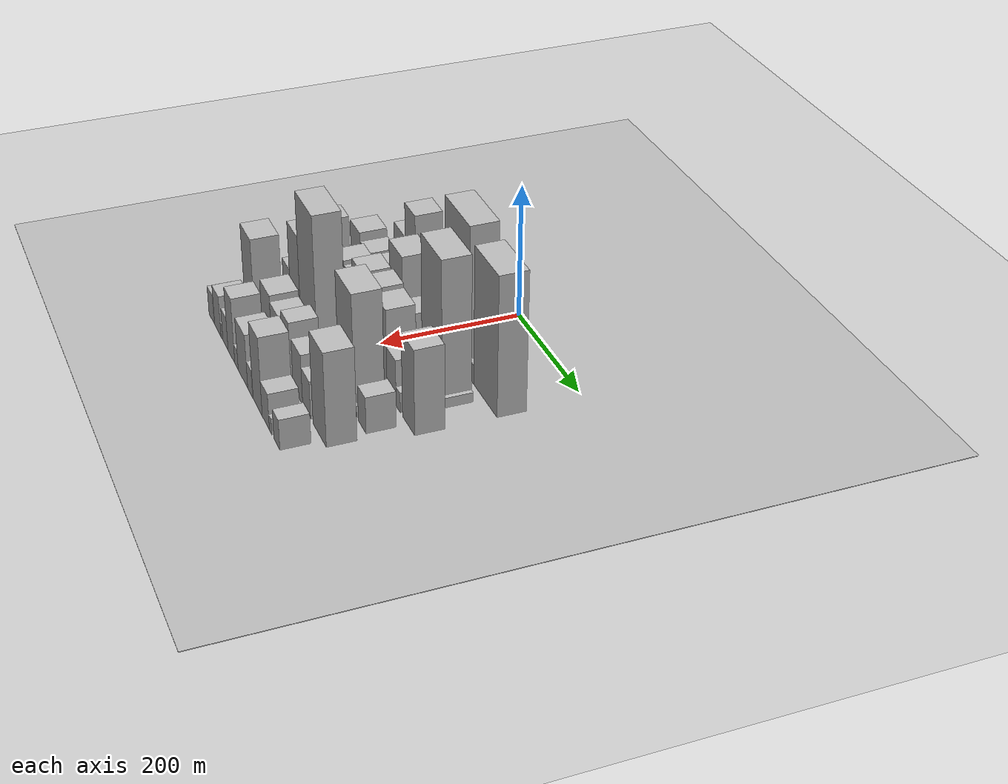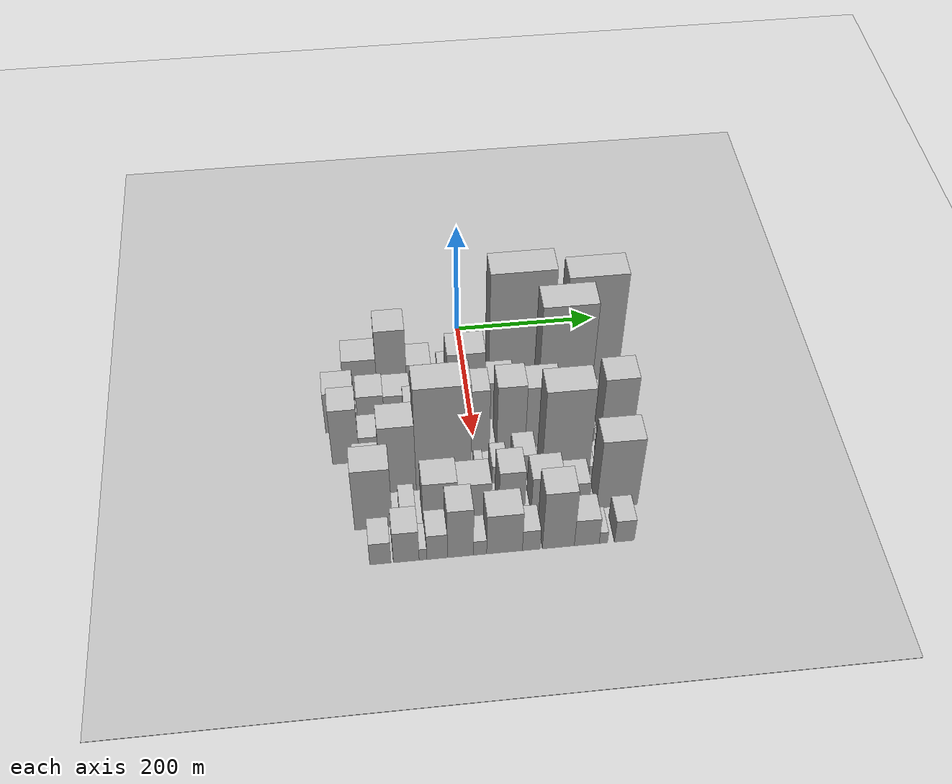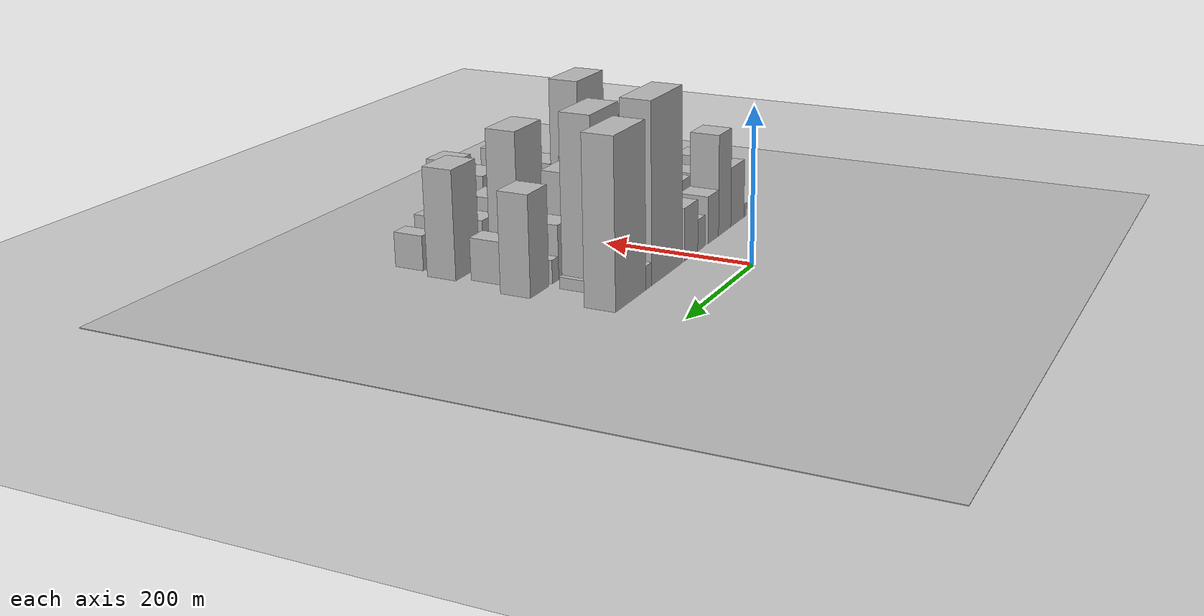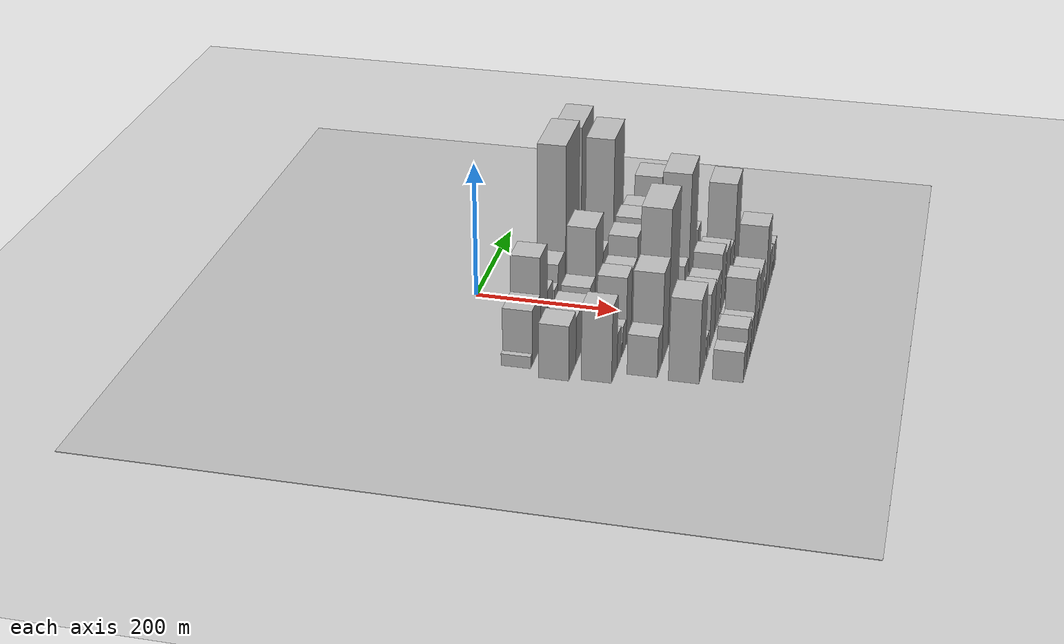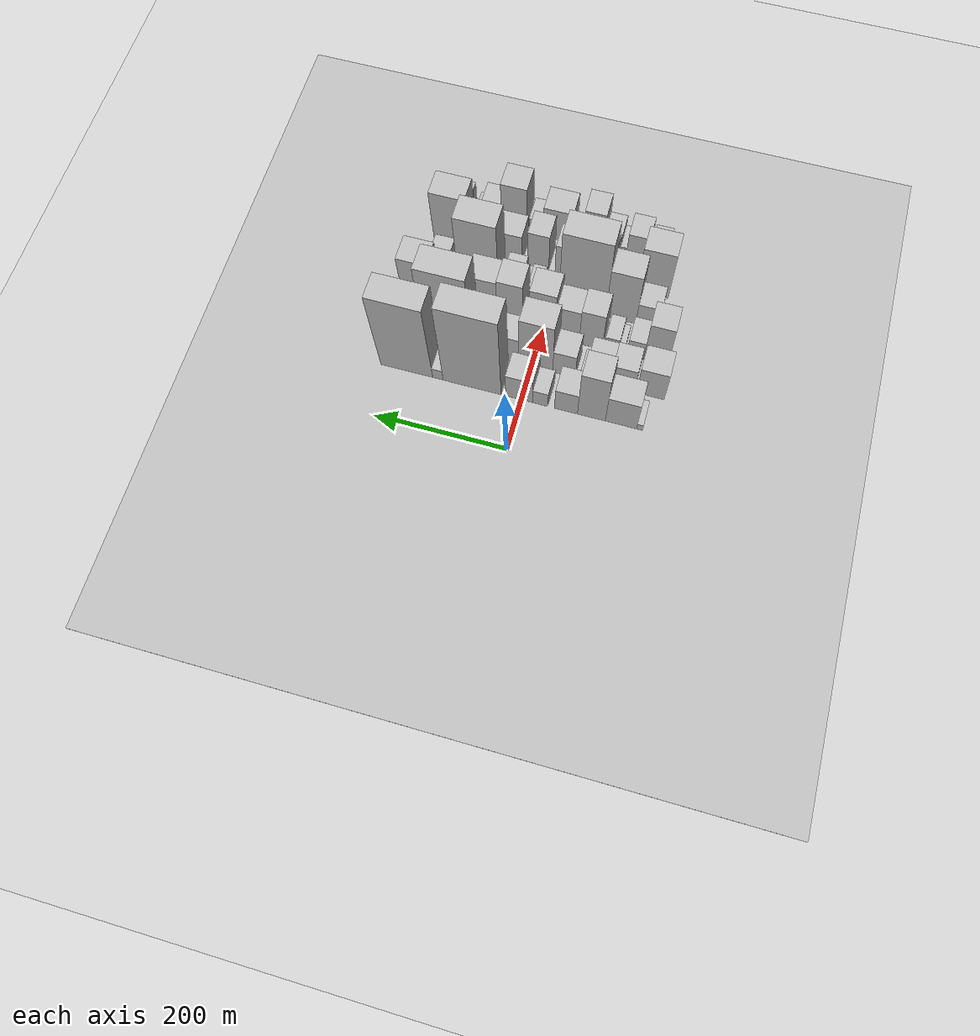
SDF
<sdf version="1.6">
 <world name="default">
  <include><name>ground_plane_1</name><uri>model://HANNAS_ground_plane</uri></include>
  <include>
   <name>ground_plane_2</name>
   <uri>model://HANNAS_ground_plane</uri>
   <pose>100 0 0  0 0 0</pose>
  </include>
  <model name="building_22">
   <static>1</static>
   <pose>100.0000 -175.6057 0 0.000000 0.000000 0.000000</pose>
   <link name="link">
    <pose>0 0 9.00 0 0 0</pose>
    <collision name="collision"><geometry><box><size>40.0000 8.9547 18.0000</size></box></geometry></collision>
    <visual name="visual">
     <cast_shadows>0</cast_shadows>
     <geometry><box><size>40.0000 8.9547 18.0000</size></box></geometry>
     <material>
      <script>
       <uri>model://HANNAS_wall/materials/scripts</uri>
       <uri>model://HANNAS_wall/materials/textures</uri>
       <name>vrc/HANNAS_wall</name>
      </script>
     </material>
    </visual>
   </link>
  </model>
  <model name="building_23">
   <static>1</static>
   <pose>100.0000 -147.9106 0 0.000000 0.000000 0.000000</pose>
   <link name="link">
    <pose>0 0 40.50 0 0 0</pose>
    <collision name="collision"><geometry><box><size>40.0000 46.4355 81.0000</size></box></geometry></collision>
    <visual name="visual">
     <cast_shadows>0</cast_shadows>
     <geometry><box><size>40.0000 46.4355 81.0000</size></box></geometry>
     <material>
      <script>
       <uri>model://HANNAS_wall/materials/scripts</uri>
       <uri>model://HANNAS_wall/materials/textures</uri>
       <name>vrc/HANNAS_wall</name>
      </script>
     </material>
    </visual>
   </link>
  </model>
  <model name="building_24">
   <static>1</static>
   <pose>100.0000 -103.9873 0 0.000000 0.000000 0.000000</pose>
   <link name="link">
    <pose>0 0 67.50 0 0 0</pose>
    <collision name="collision"><geometry><box><size>40.0000 41.4111 135.0000</size></box></geometry></collision>
    <visual name="visual">
     <cast_shadows>0</cast_shadows>
     <geometry><box><size>40.0000 41.4111 135.0000</size></box></geometry>
     <material>
      <script>
       <uri>model://HANNAS_wall/materials/scripts</uri>
       <uri>model://HANNAS_wall/materials/textures</uri>
       <name>vrc/HANNAS_wall</name>
      </script>
     </material>
    </visual>
   </link>
  </model>
  <model name="building_25">
   <static>1</static>
   <pose>100.0000 -66.1264 0 0.000000 0.000000 0.000000</pose>
   <link name="link">
    <pose>0 0 31.50 0 0 0</pose>
    <collision name="collision"><geometry><box><size>40.0000 34.3106 63.0000</size></box></geometry></collision>
    <visual name="visual">
     <cast_shadows>0</cast_shadows>
     <geometry><box><size>40.0000 34.3106 63.0000</size></box></geometry>
     <material>
      <script>
       <uri>model://HANNAS_wall/materials/scripts</uri>
       <uri>model://HANNAS_wall/materials/textures</uri>
       <name>vrc/HANNAS_wall</name>
      </script>
     </material>
    </visual>
   </link>
  </model>
  <model name="building_26">
   <static>1</static>
   <pose>100.0000 -27.5412 0 0.000000 0.000000 0.000000</pose>
   <link name="link">
    <pose>0 0 21.00 0 0 0</pose>
    <collision name="collision"><geometry><box><size>40.0000 22.8598 42.0000</size></box></geometry></collision>
    <visual name="visual">
     <cast_shadows>0</cast_shadows>
     <geometry><box><size>40.0000 22.8598 42.0000</size></box></geometry>
     <material>
      <script>
       <uri>model://HANNAS_wall/materials/scripts</uri>
       <uri>model://HANNAS_wall/materials/textures</uri>
       <name>vrc/HANNAS_wall</name>
      </script>
     </material>
    </visual>
   </link>
  </model>
  <model name="building_27">
   <static>1</static>
   <pose>100.0000 4.2147 0 0.000000 0.000000 0.000000</pose>
   <link name="link">
    <pose>0 0 34.50 0 0 0</pose>
    <collision name="collision"><geometry><box><size>40.0000 40.6521 69.0000</size></box></geometry></collision>
    <visual name="visual">
     <cast_shadows>0</cast_shadows>
     <geometry><box><size>40.0000 40.6521 69.0000</size></box></geometry>
     <material>
      <script>
       <uri>model://HANNAS_wall/materials/scripts</uri>
       <uri>model://HANNAS_wall/materials/textures</uri>
       <name>vrc/HANNAS_wall</name>
      </script>
     </material>
    </visual>
   </link>
  </model>
  <model name="building_28">
   <static>1</static>
   <pose>100.0000 75.6349 0 0.000000 0.000000 0.000000</pose>
   <link name="link">
    <pose>0 0 112.50 0 0 0</pose>
    <collision name="collision"><geometry><box><size>40.0000 88.1882 225.0000</size></box></geometry></collision>
    <visual name="visual">
     <cast_shadows>0</cast_shadows>
     <geometry><box><size>40.0000 88.1882 225.0000</size></box></geometry>
     <material>
      <script>
       <uri>model://HANNAS_wall/materials/scripts</uri>
       <uri>model://HANNAS_wall/materials/textures</uri>
       <name>vrc/HANNAS_wall</name>
      </script>
     </material>
    </visual>
   </link>
  </model>
  <model name="building_29">
   <static>1</static>
   <pose>100.0000 127.7942 0 0.000000 0.000000 0.000000</pose>
   <link name="link">
    <pose>0 0 15.00 0 0 0</pose>
    <collision name="collision"><geometry><box><size>40.0000 16.1303 30.0000</size></box></geometry></collision>
    <visual name="visual">
     <cast_shadows>0</cast_shadows>
     <geometry><box><size>40.0000 16.1303 30.0000</size></box></geometry>
     <material>
      <script>
       <uri>model://HANNAS_wall/materials/scripts</uri>
       <uri>model://HANNAS_wall/materials/textures</uri>
       <name>vrc/HANNAS_wall</name>
      </script>
     </material>
    </visual>
   </link>
  </model>
  <model name="building_30">
   <static>1</static>
   <pose>100.0000 175.9468 0 0.000000 0.000000 0.000000</pose>
   <link name="link">
    <pose>0 0 103.50 0 0 0</pose>
    <collision name="collision"><geometry><box><size>40.0000 80.1750 207.0000</size></box></geometry></collision>
    <visual name="visual">
     <cast_shadows>0</cast_shadows>
     <geometry><box><size>40.0000 80.1750 207.0000</size></box></geometry>
     <material>
      <script>
       <uri>model://HANNAS_wall/materials/scripts</uri>
       <uri>model://HANNAS_wall/materials/textures</uri>
       <name>vrc/HANNAS_wall</name>
      </script>
     </material>
    </visual>
   </link>
  </model>
  <model name="building_74">
   <static>1</static>
   <pose>155.0000 -178.7710 0 0.000000 0.000000 0.000000</pose>
   <link name="link">
    <pose>0 0 40.50 0 0 0</pose>
    <collision name="collision"><geometry><box><size>40.0000 41.5594 81.0000</size></box></geometry></collision>
    <visual name="visual">
     <cast_shadows>0</cast_shadows>
     <geometry><box><size>40.0000 41.5594 81.0000</size></box></geometry>
     <material>
      <script>
       <uri>model://HANNAS_wall/materials/scripts</uri>
       <uri>model://HANNAS_wall/materials/textures</uri>
       <name>vrc/HANNAS_wall</name>
      </script>
     </material>
    </visual>
   </link>
  </model>
  <model name="building_75">
   <static>1</static>
   <pose>155.0000 -136.8236 0 0.000000 0.000000 0.000000</pose>
   <link name="link">
    <pose>0 0 34.50 0 0 0</pose>
    <collision name="collision"><geometry><box><size>40.0000 36.3355 69.0000</size></box></geometry></collision>
    <visual name="visual">
     <cast_shadows>0</cast_shadows>
     <geometry><box><size>40.0000 36.3355 69.0000</size></box></geometry>
     <material>
      <script>
       <uri>model://HANNAS_wall/materials/scripts</uri>
       <uri>model://HANNAS_wall/materials/textures</uri>
       <name>vrc/HANNAS_wall</name>
      </script>
     </material>
    </visual>
   </link>
  </model>
  <model name="building_76">
   <static>1</static>
   <pose>155.0000 -100.0804 0 0.000000 0.000000 0.000000</pose>
   <link name="link">
    <pose>0 0 33.00 0 0 0</pose>
    <collision name="collision"><geometry><box><size>40.0000 37.1510 66.0000</size></box></geometry></collision>
    <visual name="visual">
     <cast_shadows>0</cast_shadows>
     <geometry><box><size>40.0000 37.1510 66.0000</size></box></geometry>
     <material>
      <script>
       <uri>model://HANNAS_wall/materials/scripts</uri>
       <uri>model://HANNAS_wall/materials/textures</uri>
       <name>vrc/HANNAS_wall</name>
      </script>
     </material>
    </visual>
   </link>
  </model>
  <model name="building_77">
   <static>1</static>
   <pose>155.0000 -77.2413 0 0.000000 0.000000 0.000000</pose>
   <link name="link">
    <pose>0 0 10.50 0 0 0</pose>
    <collision name="collision"><geometry><box><size>40.0000 8.5272 21.0000</size></box></geometry></collision>
    <visual name="visual">
     <cast_shadows>0</cast_shadows>
     <geometry><box><size>40.0000 8.5272 21.0000</size></box></geometry>
     <material>
      <script>
       <uri>model://HANNAS_wall/materials/scripts</uri>
       <uri>model://HANNAS_wall/materials/textures</uri>
       <name>vrc/HANNAS_wall</name>
      </script>
     </material>
    </visual>
   </link>
  </model>
  <model name="building_78">
   <static>1</static>
   <pose>155.0000 -48.8258 0 0.000000 0.000000 0.000000</pose>
   <link name="link">
    <pose>0 0 33.00 0 0 0</pose>
    <collision name="collision"><geometry><box><size>40.0000 34.3039 66.0000</size></box></geometry></collision>
    <visual name="visual">
     <cast_shadows>0</cast_shadows>
     <geometry><box><size>40.0000 34.3039 66.0000</size></box></geometry>
     <material>
      <script>
       <uri>model://HANNAS_wall/materials/scripts</uri>
       <uri>model://HANNAS_wall/materials/textures</uri>
       <name>vrc/HANNAS_wall</name>
      </script>
     </material>
    </visual>
   </link>
  </model>
  <model name="building_79">
   <static>1</static>
   <pose>155.0000 -6.0133 0 0.000000 0.000000 0.000000</pose>
   <link name="link">
    <pose>0 0 69.00 0 0 0</pose>
    <collision name="collision"><geometry><box><size>40.0000 51.3212 138.0000</size></box></geometry></collision>
    <visual name="visual">
     <cast_shadows>0</cast_shadows>
     <geometry><box><size>40.0000 51.3212 138.0000</size></box></geometry>
     <material>
      <script>
       <uri>model://HANNAS_wall/materials/scripts</uri>
       <uri>model://HANNAS_wall/materials/textures</uri>
       <name>vrc/HANNAS_wall</name>
      </script>
     </material>
    </visual>
   </link>
  </model>
  <model name="building_80">
   <static>1</static>
   <pose>155.0000 39.8770 0 0.000000 0.000000 0.000000</pose>
   <link name="link">
    <pose>0 0 37.50 0 0 0</pose>
    <collision name="collision"><geometry><box><size>40.0000 40.4593 75.0000</size></box></geometry></collision>
    <visual name="visual">
     <cast_shadows>0</cast_shadows>
     <geometry><box><size>40.0000 40.4593 75.0000</size></box></geometry>
     <material>
      <script>
       <uri>model://HANNAS_wall/materials/scripts</uri>
       <uri>model://HANNAS_wall/materials/textures</uri>
       <name>vrc/HANNAS_wall</name>
      </script>
     </material>
    </visual>
   </link>
  </model>
  <model name="building_81">
   <static>1</static>
   <pose>155.0000 81.4177 0 0.000000 0.000000 0.000000</pose>
   <link name="link">
    <pose>0 0 19.50 0 0 0</pose>
    <collision name="collision"><geometry><box><size>40.0000 22.6221 39.0000</size></box></geometry></collision>
    <visual name="visual">
     <cast_shadows>0</cast_shadows>
     <geometry><box><size>40.0000 22.6221 39.0000</size></box></geometry>
     <material>
      <script>
       <uri>model://HANNAS_wall/materials/scripts</uri>
       <uri>model://HANNAS_wall/materials/textures</uri>
       <name>vrc/HANNAS_wall</name>
      </script>
     </material>
    </visual>
   </link>
  </model>
  <model name="building_82">
   <static>1</static>
   <pose>155.0000 129.2748 0 0.000000 0.000000 0.000000</pose>
   <link name="link">
    <pose>0 0 106.50 0 0 0</pose>
    <collision name="collision"><geometry><box><size>40.0000 73.0922 213.0000</size></box></geometry></collision>
    <visual name="visual">
     <cast_shadows>0</cast_shadows>
     <geometry><box><size>40.0000 73.0922 213.0000</size></box></geometry>
     <material>
      <script>
       <uri>model://HANNAS_wall/materials/scripts</uri>
       <uri>model://HANNAS_wall/materials/textures</uri>
       <name>vrc/HANNAS_wall</name>
      </script>
     </material>
    </visual>
   </link>
  </model>
  <model name="building_83">
   <static>1</static>
   <pose>155.0000 169.4314 0 0.000000 0.000000 0.000000</pose>
   <link name="link">
    <pose>0 0 7.50 0 0 0</pose>
    <collision name="collision"><geometry><box><size>40.0000 7.2210 15.0000</size></box></geometry></collision>
    <visual name="visual">
     <cast_shadows>0</cast_shadows>
     <geometry><box><size>40.0000 7.2210 15.0000</size></box></geometry>
     <material>
      <script>
       <uri>model://HANNAS_wall/materials/scripts</uri>
       <uri>model://HANNAS_wall/materials/textures</uri>
       <name>vrc/HANNAS_wall</name>
      </script>
     </material>
    </visual>
   </link>
  </model>
  <model name="building_121">
   <static>1</static>
   <pose>210.0000 -174.4764 0 0.000000 0.000000 0.000000</pose>
   <link name="link">
    <pose>0 0 55.50 0 0 0</pose>
    <collision name="collision"><geometry><box><size>40.0000 36.5147 111.0000</size></box></geometry></collision>
    <visual name="visual">
     <cast_shadows>0</cast_shadows>
     <geometry><box><size>40.0000 36.5147 111.0000</size></box></geometry>
     <material>
      <script>
       <uri>model://HANNAS_wall/materials/scripts</uri>
       <uri>model://HANNAS_wall/materials/textures</uri>
       <name>vrc/HANNAS_wall</name>
      </script>
     </material>
    </visual>
   </link>
  </model>
  <model name="building_122">
   <static>1</static>
   <pose>210.0000 -143.3797 0 0.000000 0.000000 0.000000</pose>
   <link name="link">
    <pose>0 0 25.50 0 0 0</pose>
    <collision name="collision"><geometry><box><size>40.0000 25.6786 51.0000</size></box></geometry></collision>
    <visual name="visual">
     <cast_shadows>0</cast_shadows>
     <geometry><box><size>40.0000 25.6786 51.0000</size></box></geometry>
     <material>
      <script>
       <uri>model://HANNAS_wall/materials/scripts</uri>
       <uri>model://HANNAS_wall/materials/textures</uri>
       <name>vrc/HANNAS_wall</name>
      </script>
     </material>
    </visual>
   </link>
  </model>
  <model name="building_123">
   <static>1</static>
   <pose>210.0000 -122.2338 0 0.000000 0.000000 0.000000</pose>
   <link name="link">
    <pose>0 0 10.50 0 0 0</pose>
    <collision name="collision"><geometry><box><size>40.0000 8.6133 21.0000</size></box></geometry></collision>
    <visual name="visual">
     <cast_shadows>0</cast_shadows>
     <geometry><box><size>40.0000 8.6133 21.0000</size></box></geometry>
     <material>
      <script>
       <uri>model://HANNAS_wall/materials/scripts</uri>
       <uri>model://HANNAS_wall/materials/textures</uri>
       <name>vrc/HANNAS_wall</name>
      </script>
     </material>
    </visual>
   </link>
  </model>
  <model name="building_124">
   <static>1</static>
   <pose>210.0000 -107.1232 0 0.000000 0.000000 0.000000</pose>
   <link name="link">
    <pose>0 0 21.00 0 0 0</pose>
    <collision name="collision"><geometry><box><size>40.0000 21.6079 42.0000</size></box></geometry></collision>
    <visual name="visual">
     <cast_shadows>0</cast_shadows>
     <geometry><box><size>40.0000 21.6079 42.0000</size></box></geometry>
     <material>
      <script>
       <uri>model://HANNAS_wall/materials/scripts</uri>
       <uri>model://HANNAS_wall/materials/textures</uri>
       <name>vrc/HANNAS_wall</name>
      </script>
     </material>
    </visual>
   </link>
  </model>
  <model name="building_125">
   <static>1</static>
   <pose>210.0000 -75.4646 0 0.000000 0.000000 0.000000</pose>
   <link name="link">
    <pose>0 0 51.00 0 0 0</pose>
    <collision name="collision"><geometry><box><size>40.0000 35.7093 102.0000</size></box></geometry></collision>
    <visual name="visual">
     <cast_shadows>0</cast_shadows>
     <geometry><box><size>40.0000 35.7093 102.0000</size></box></geometry>
     <material>
      <script>
       <uri>model://HANNAS_wall/materials/scripts</uri>
       <uri>model://HANNAS_wall/materials/textures</uri>
       <name>vrc/HANNAS_wall</name>
      </script>
     </material>
    </visual>
   </link>
  </model>
  <model name="building_126">
   <static>1</static>
   <pose>210.0000 -39.4611 0 0.000000 0.000000 0.000000</pose>
   <link name="link">
    <pose>0 0 48.00 0 0 0</pose>
    <collision name="collision"><geometry><box><size>40.0000 36.2976 96.0000</size></box></geometry></collision>
    <visual name="visual">
     <cast_shadows>0</cast_shadows>
     <geometry><box><size>40.0000 36.2976 96.0000</size></box></geometry>
     <material>
      <script>
       <uri>model://HANNAS_wall/materials/scripts</uri>
       <uri>model://HANNAS_wall/materials/textures</uri>
       <name>vrc/HANNAS_wall</name>
      </script>
     </material>
    </visual>
   </link>
  </model>
  <model name="building_127">
   <static>1</static>
   <pose>210.0000 -1.0134 0 0.000000 0.000000 0.000000</pose>
   <link name="link">
    <pose>0 0 63.00 0 0 0</pose>
    <collision name="collision"><geometry><box><size>40.0000 40.5979 126.0000</size></box></geometry></collision>
    <visual name="visual">
     <cast_shadows>0</cast_shadows>
     <geometry><box><size>40.0000 40.5979 126.0000</size></box></geometry>
     <material>
      <script>
       <uri>model://HANNAS_wall/materials/scripts</uri>
       <uri>model://HANNAS_wall/materials/textures</uri>
       <name>vrc/HANNAS_wall</name>
      </script>
     </material>
    </visual>
   </link>
  </model>
  <model name="building_128">
   <static>1</static>
   <pose>210.0000 48.7160 0 0.000000 0.000000 0.000000</pose>
   <link name="link">
    <pose>0 0 64.50 0 0 0</pose>
    <collision name="collision"><geometry><box><size>40.0000 38.8609 129.0000</size></box></geometry></collision>
    <visual name="visual">
     <cast_shadows>0</cast_shadows>
     <geometry><box><size>40.0000 38.8609 129.0000</size></box></geometry>
     <material>
      <script>
       <uri>model://HANNAS_wall/materials/scripts</uri>
       <uri>model://HANNAS_wall/materials/textures</uri>
       <name>vrc/HANNAS_wall</name>
      </script>
     </material>
    </visual>
   </link>
  </model>
  <model name="building_129">
   <static>1</static>
   <pose>210.0000 90.2143 0 0.000000 0.000000 0.000000</pose>
   <link name="link">
    <pose>0 0 61.50 0 0 0</pose>
    <collision name="collision"><geometry><box><size>40.0000 44.1357 123.0000</size></box></geometry></collision>
    <visual name="visual">
     <cast_shadows>0</cast_shadows>
     <geometry><box><size>40.0000 44.1357 123.0000</size></box></geometry>
     <material>
      <script>
       <uri>model://HANNAS_wall/materials/scripts</uri>
       <uri>model://HANNAS_wall/materials/textures</uri>
       <name>vrc/HANNAS_wall</name>
      </script>
     </material>
    </visual>
   </link>
  </model>
  <model name="building_130">
   <static>1</static>
   <pose>210.0000 129.6789 0 0.000000 0.000000 0.000000</pose>
   <link name="link">
    <pose>0 0 34.50 0 0 0</pose>
    <collision name="collision"><geometry><box><size>40.0000 34.7935 69.0000</size></box></geometry></collision>
    <visual name="visual">
     <cast_shadows>0</cast_shadows>
     <geometry><box><size>40.0000 34.7935 69.0000</size></box></geometry>
     <material>
      <script>
       <uri>model://HANNAS_wall/materials/scripts</uri>
       <uri>model://HANNAS_wall/materials/textures</uri>
       <name>vrc/HANNAS_wall</name>
      </script>
     </material>
    </visual>
   </link>
  </model>
  <model name="building_131">
   <static>1</static>
   <pose>210.0000 155.0085 0 0.000000 0.000000 0.000000</pose>
   <link name="link">
    <pose>0 0 15.00 0 0 0</pose>
    <collision name="collision"><geometry><box><size>40.0000 15.8657 30.0000</size></box></geometry></collision>
    <visual name="visual">
     <cast_shadows>0</cast_shadows>
     <geometry><box><size>40.0000 15.8657 30.0000</size></box></geometry>
     <material>
      <script>
       <uri>model://HANNAS_wall/materials/scripts</uri>
       <uri>model://HANNAS_wall/materials/textures</uri>
       <name>vrc/HANNAS_wall</name>
      </script>
     </material>
    </visual>
   </link>
  </model>
  <model name="building_132">
   <static>1</static>
   <pose>210.0000 193.5037 0 0.000000 0.000000 0.000000</pose>
   <link name="link">
    <pose>0 0 63.00 0 0 0</pose>
    <collision name="collision"><geometry><box><size>40.0000 45.1246 126.0000</size></box></geometry></collision>
    <visual name="visual">
     <cast_shadows>0</cast_shadows>
     <geometry><box><size>40.0000 45.1246 126.0000</size></box></geometry>
     <material>
      <script>
       <uri>model://HANNAS_wall/materials/scripts</uri>
       <uri>model://HANNAS_wall/materials/textures</uri>
       <name>vrc/HANNAS_wall</name>
      </script>
     </material>
    </visual>
   </link>
  </model>
  <model name="building_171">
   <static>1</static>
   <pose>265.0000 -148.5338 0 0.000000 0.000000 0.000000</pose>
   <link name="link">
    <pose>0 0 30.00 0 0 0</pose>
    <collision name="collision"><geometry><box><size>40.0000 34.2059 60.0000</size></box></geometry></collision>
    <visual name="visual">
     <cast_shadows>0</cast_shadows>
     <geometry><box><size>40.0000 34.2059 60.0000</size></box></geometry>
     <material>
      <script>
       <uri>model://HANNAS_wall/materials/scripts</uri>
       <uri>model://HANNAS_wall/materials/textures</uri>
       <name>vrc/HANNAS_wall</name>
      </script>
     </material>
    </visual>
   </link>
  </model>
  <model name="building_172">
   <static>1</static>
   <pose>265.0000 -108.0663 0 0.000000 0.000000 0.000000</pose>
   <link name="link">
    <pose>0 0 67.50 0 0 0</pose>
    <collision name="collision"><geometry><box><size>40.0000 46.7291 135.0000</size></box></geometry></collision>
    <visual name="visual">
     <cast_shadows>0</cast_shadows>
     <geometry><box><size>40.0000 46.7291 135.0000</size></box></geometry>
     <material>
      <script>
       <uri>model://HANNAS_wall/materials/scripts</uri>
       <uri>model://HANNAS_wall/materials/textures</uri>
       <name>vrc/HANNAS_wall</name>
      </script>
     </material>
    </visual>
   </link>
  </model>
  <model name="building_173">
   <static>1</static>
   <pose>265.0000 -48.2982 0 0.000000 0.000000 0.000000</pose>
   <link name="link">
    <pose>0 0 102.00 0 0 0</pose>
    <collision name="collision"><geometry><box><size>40.0000 72.8071 204.0000</size></box></geometry></collision>
    <visual name="visual">
     <cast_shadows>0</cast_shadows>
     <geometry><box><size>40.0000 72.8071 204.0000</size></box></geometry>
     <material>
      <script>
       <uri>model://HANNAS_wall/materials/scripts</uri>
       <uri>model://HANNAS_wall/materials/textures</uri>
       <name>vrc/HANNAS_wall</name>
      </script>
     </material>
    </visual>
   </link>
  </model>
  <model name="building_174">
   <static>1</static>
   <pose>265.0000 0.7067 0 0.000000 0.000000 0.000000</pose>
   <link name="link">
    <pose>0 0 12.00 0 0 0</pose>
    <collision name="collision"><geometry><box><size>40.0000 11.2027 24.0000</size></box></geometry></collision>
    <visual name="visual">
     <cast_shadows>0</cast_shadows>
     <geometry><box><size>40.0000 11.2027 24.0000</size></box></geometry>
     <material>
      <script>
       <uri>model://HANNAS_wall/materials/scripts</uri>
       <uri>model://HANNAS_wall/materials/textures</uri>
       <name>vrc/HANNAS_wall</name>
      </script>
     </material>
    </visual>
   </link>
  </model>
  <model name="building_175">
   <static>1</static>
   <pose>265.0000 26.6366 0 0.000000 0.000000 0.000000</pose>
   <link name="link">
    <pose>0 0 18.00 0 0 0</pose>
    <collision name="collision"><geometry><box><size>40.0000 20.6572 36.0000</size></box></geometry></collision>
    <visual name="visual">
     <cast_shadows>0</cast_shadows>
     <geometry><box><size>40.0000 20.6572 36.0000</size></box></geometry>
     <material>
      <script>
       <uri>model://HANNAS_wall/materials/scripts</uri>
       <uri>model://HANNAS_wall/materials/textures</uri>
       <name>vrc/HANNAS_wall</name>
      </script>
     </material>
    </visual>
   </link>
  </model>
  <model name="building_176">
   <static>1</static>
   <pose>265.0000 60.2432 0 0.000000 0.000000 0.000000</pose>
   <link name="link">
    <pose>0 0 27.00 0 0 0</pose>
    <collision name="collision"><geometry><box><size>40.0000 28.5559 54.0000</size></box></geometry></collision>
    <visual name="visual">
     <cast_shadows>0</cast_shadows>
     <geometry><box><size>40.0000 28.5559 54.0000</size></box></geometry>
     <material>
      <script>
       <uri>model://HANNAS_wall/materials/scripts</uri>
       <uri>model://HANNAS_wall/materials/textures</uri>
       <name>vrc/HANNAS_wall</name>
      </script>
     </material>
    </visual>
   </link>
  </model>
  <model name="building_177">
   <static>1</static>
   <pose>265.0000 114.3531 0 0.000000 0.000000 0.000000</pose>
   <link name="link">
    <pose>0 0 88.50 0 0 0</pose>
    <collision name="collision"><geometry><box><size>40.0000 63.6639 177.0000</size></box></geometry></collision>
    <visual name="visual">
     <cast_shadows>0</cast_shadows>
     <geometry><box><size>40.0000 63.6639 177.0000</size></box></geometry>
     <material>
      <script>
       <uri>model://HANNAS_wall/materials/scripts</uri>
       <uri>model://HANNAS_wall/materials/textures</uri>
       <name>vrc/HANNAS_wall</name>
      </script>
     </material>
    </visual>
   </link>
  </model>
  <model name="building_178">
   <static>1</static>
   <pose>265.0000 149.9125 0 0.000000 0.000000 0.000000</pose>
   <link name="link">
    <pose>0 0 9.00 0 0 0</pose>
    <collision name="collision"><geometry><box><size>40.0000 7.4548 18.0000</size></box></geometry></collision>
    <visual name="visual">
     <cast_shadows>0</cast_shadows>
     <geometry><box><size>40.0000 7.4548 18.0000</size></box></geometry>
     <material>
      <script>
       <uri>model://HANNAS_wall/materials/scripts</uri>
       <uri>model://HANNAS_wall/materials/textures</uri>
       <name>vrc/HANNAS_wall</name>
      </script>
     </material>
    </visual>
   </link>
  </model>
  <model name="building_179">
   <static>1</static>
   <pose>265.0000 175.7255 0 0.000000 0.000000 0.000000</pose>
   <link name="link">
    <pose>0 0 27.00 0 0 0</pose>
    <collision name="collision"><geometry><box><size>40.0000 30.1713 54.0000</size></box></geometry></collision>
    <visual name="visual">
     <cast_shadows>0</cast_shadows>
     <geometry><box><size>40.0000 30.1713 54.0000</size></box></geometry>
     <material>
      <script>
       <uri>model://HANNAS_wall/materials/scripts</uri>
       <uri>model://HANNAS_wall/materials/textures</uri>
       <name>vrc/HANNAS_wall</name>
      </script>
     </material>
    </visual>
   </link>
  </model>
  <model name="building_221">
   <static>1</static>
   <pose>320.0000 -144.8244 0 0.000000 0.000000 0.000000</pose>
   <link name="link">
    <pose>0 0 61.50 0 0 0</pose>
    <collision name="collision"><geometry><box><size>40.0000 49.0615 123.0000</size></box></geometry></collision>
    <visual name="visual">
     <cast_shadows>0</cast_shadows>
     <geometry><box><size>40.0000 49.0615 123.0000</size></box></geometry>
     <material>
      <script>
       <uri>model://HANNAS_wall/materials/scripts</uri>
       <uri>model://HANNAS_wall/materials/textures</uri>
       <name>vrc/HANNAS_wall</name>
      </script>
     </material>
    </visual>
   </link>
  </model>
  <model name="building_222">
   <static>1</static>
   <pose>320.0000 -100.0794 0 0.000000 0.000000 0.000000</pose>
   <link name="link">
    <pose>0 0 18.00 0 0 0</pose>
    <collision name="collision"><geometry><box><size>40.0000 20.4284 36.0000</size></box></geometry></collision>
    <visual name="visual">
     <cast_shadows>0</cast_shadows>
     <geometry><box><size>40.0000 20.4284 36.0000</size></box></geometry>
     <material>
      <script>
       <uri>model://HANNAS_wall/materials/scripts</uri>
       <uri>model://HANNAS_wall/materials/textures</uri>
       <name>vrc/HANNAS_wall</name>
      </script>
     </material>
    </visual>
   </link>
  </model>
  <model name="building_223">
   <static>1</static>
   <pose>320.0000 -58.2316 0 0.000000 0.000000 0.000000</pose>
   <link name="link">
    <pose>0 0 42.00 0 0 0</pose>
    <collision name="collision"><geometry><box><size>40.0000 45.2672 84.0000</size></box></geometry></collision>
    <visual name="visual">
     <cast_shadows>0</cast_shadows>
     <geometry><box><size>40.0000 45.2672 84.0000</size></box></geometry>
     <material>
      <script>
       <uri>model://HANNAS_wall/materials/scripts</uri>
       <uri>model://HANNAS_wall/materials/textures</uri>
       <name>vrc/HANNAS_wall</name>
      </script>
     </material>
    </visual>
   </link>
  </model>
  <model name="building_224">
   <static>1</static>
   <pose>320.0000 -13.7803 0 0.000000 0.000000 0.000000</pose>
   <link name="link">
    <pose>0 0 37.50 0 0 0</pose>
    <collision name="collision"><geometry><box><size>40.0000 43.6354 75.0000</size></box></geometry></collision>
    <visual name="visual">
     <cast_shadows>0</cast_shadows>
     <geometry><box><size>40.0000 43.6354 75.0000</size></box></geometry>
     <material>
      <script>
       <uri>model://HANNAS_wall/materials/scripts</uri>
       <uri>model://HANNAS_wall/materials/textures</uri>
       <name>vrc/HANNAS_wall</name>
      </script>
     </material>
    </visual>
   </link>
  </model>
  <model name="building_225">
   <static>1</static>
   <pose>320.0000 34.8686 0 0.000000 0.000000 0.000000</pose>
   <link name="link">
    <pose>0 0 46.50 0 0 0</pose>
    <collision name="collision"><geometry><box><size>40.0000 33.6625 93.0000</size></box></geometry></collision>
    <visual name="visual">
     <cast_shadows>0</cast_shadows>
     <geometry><box><size>40.0000 33.6625 93.0000</size></box></geometry>
     <material>
      <script>
       <uri>model://HANNAS_wall/materials/scripts</uri>
       <uri>model://HANNAS_wall/materials/textures</uri>
       <name>vrc/HANNAS_wall</name>
      </script>
     </material>
    </visual>
   </link>
  </model>
  <model name="building_226">
   <static>1</static>
   <pose>320.0000 81.5338 0 0.000000 0.000000 0.000000</pose>
   <link name="link">
    <pose>0 0 37.50 0 0 0</pose>
    <collision name="collision"><geometry><box><size>40.0000 41.6678 75.0000</size></box></geometry></collision>
    <visual name="visual">
     <cast_shadows>0</cast_shadows>
     <geometry><box><size>40.0000 41.6678 75.0000</size></box></geometry>
     <material>
      <script>
       <uri>model://HANNAS_wall/materials/scripts</uri>
       <uri>model://HANNAS_wall/materials/textures</uri>
       <name>vrc/HANNAS_wall</name>
      </script>
     </material>
    </visual>
   </link>
  </model>
  <model name="building_227">
   <static>1</static>
   <pose>320.0000 119.4358 0 0.000000 0.000000 0.000000</pose>
   <link name="link">
    <pose>0 0 28.50 0 0 0</pose>
    <collision name="collision"><geometry><box><size>40.0000 34.1361 57.0000</size></box></geometry></collision>
    <visual name="visual">
     <cast_shadows>0</cast_shadows>
     <geometry><box><size>40.0000 34.1361 57.0000</size></box></geometry>
     <material>
      <script>
       <uri>model://HANNAS_wall/materials/scripts</uri>
       <uri>model://HANNAS_wall/materials/textures</uri>
       <name>vrc/HANNAS_wall</name>
      </script>
     </material>
    </visual>
   </link>
  </model>
  <model name="building_228">
   <static>1</static>
   <pose>320.0000 173.7822 0 0.000000 0.000000 0.000000</pose>
   <link name="link">
    <pose>0 0 69.00 0 0 0</pose>
    <collision name="collision"><geometry><box><size>40.0000 54.5569 138.0000</size></box></geometry></collision>
    <visual name="visual">
     <cast_shadows>0</cast_shadows>
     <geometry><box><size>40.0000 54.5569 138.0000</size></box></geometry>
     <material>
      <script>
       <uri>model://HANNAS_wall/materials/scripts</uri>
       <uri>model://HANNAS_wall/materials/textures</uri>
       <name>vrc/HANNAS_wall</name>
      </script>
     </material>
    </visual>
   </link>
  </model>
  <model name="building_270">
   <static>1</static>
   <pose>375.0000 -140.0587 0 0.000000 0.000000 0.000000</pose>
   <link name="link">
    <pose>0 0 22.50 0 0 0</pose>
    <collision name="collision"><geometry><box><size>40.0000 26.9844 45.0000</size></box></geometry></collision>
    <visual name="visual">
     <cast_shadows>0</cast_shadows>
     <geometry><box><size>40.0000 26.9844 45.0000</size></box></geometry>
     <material>
      <script>
       <uri>model://HANNAS_wall/materials/scripts</uri>
       <uri>model://HANNAS_wall/materials/textures</uri>
       <name>vrc/HANNAS_wall</name>
      </script>
     </material>
    </visual>
   </link>
  </model>
  <model name="building_271">
   <static>1</static>
   <pose>375.0000 -107.1822 0 0.000000 0.000000 0.000000</pose>
   <link name="link">
    <pose>0 0 31.50 0 0 0</pose>
    <collision name="collision"><geometry><box><size>40.0000 32.7686 63.0000</size></box></geometry></collision>
    <visual name="visual">
     <cast_shadows>0</cast_shadows>
     <geometry><box><size>40.0000 32.7686 63.0000</size></box></geometry>
     <material>
      <script>
       <uri>model://HANNAS_wall/materials/scripts</uri>
       <uri>model://HANNAS_wall/materials/textures</uri>
       <name>vrc/HANNAS_wall</name>
      </script>
     </material>
    </visual>
   </link>
  </model>
  <model name="building_272">
   <static>1</static>
   <pose>375.0000 -85.8928 0 0.000000 0.000000 0.000000</pose>
   <link name="link">
    <pose>0 0 12.00 0 0 0</pose>
    <collision name="collision"><geometry><box><size>40.0000 9.8101 24.0000</size></box></geometry></collision>
    <visual name="visual">
     <cast_shadows>0</cast_shadows>
     <geometry><box><size>40.0000 9.8101 24.0000</size></box></geometry>
     <material>
      <script>
       <uri>model://HANNAS_wall/materials/scripts</uri>
       <uri>model://HANNAS_wall/materials/textures</uri>
       <name>vrc/HANNAS_wall</name>
      </script>
     </material>
    </visual>
   </link>
  </model>
  <model name="building_273">
   <static>1</static>
   <pose>375.0000 -67.7810 0 0.000000 0.000000 0.000000</pose>
   <link name="link">
    <pose>0 0 25.50 0 0 0</pose>
    <collision name="collision"><geometry><box><size>40.0000 26.4135 51.0000</size></box></geometry></collision>
    <visual name="visual">
     <cast_shadows>0</cast_shadows>
     <geometry><box><size>40.0000 26.4135 51.0000</size></box></geometry>
     <material>
      <script>
       <uri>model://HANNAS_wall/materials/scripts</uri>
       <uri>model://HANNAS_wall/materials/textures</uri>
       <name>vrc/HANNAS_wall</name>
      </script>
     </material>
    </visual>
   </link>
  </model>
  <model name="building_274">
   <static>1</static>
   <pose>375.0000 -37.9188 0 0.000000 0.000000 0.000000</pose>
   <link name="link">
    <pose>0 0 49.50 0 0 0</pose>
    <collision name="collision"><geometry><box><size>40.0000 33.3110 99.0000</size></box></geometry></collision>
    <visual name="visual">
     <cast_shadows>0</cast_shadows>
     <geometry><box><size>40.0000 33.3110 99.0000</size></box></geometry>
     <material>
      <script>
       <uri>model://HANNAS_wall/materials/scripts</uri>
       <uri>model://HANNAS_wall/materials/textures</uri>
       <name>vrc/HANNAS_wall</name>
      </script>
     </material>
    </visual>
   </link>
  </model>
  <model name="building_275">
   <static>1</static>
   <pose>375.0000 -12.8537 0 0.000000 0.000000 0.000000</pose>
   <link name="link">
    <pose>0 0 15.00 0 0 0</pose>
    <collision name="collision"><geometry><box><size>40.0000 16.8192 30.0000</size></box></geometry></collision>
    <visual name="visual">
     <cast_shadows>0</cast_shadows>
     <geometry><box><size>40.0000 16.8192 30.0000</size></box></geometry>
     <material>
      <script>
       <uri>model://HANNAS_wall/materials/scripts</uri>
       <uri>model://HANNAS_wall/materials/textures</uri>
       <name>vrc/HANNAS_wall</name>
      </script>
     </material>
    </visual>
   </link>
  </model>
  <model name="building_276">
   <static>1</static>
   <pose>375.0000 18.5329 0 0.000000 0.000000 0.000000</pose>
   <link name="link">
    <pose>0 0 40.50 0 0 0</pose>
    <collision name="collision"><geometry><box><size>40.0000 45.9540 81.0000</size></box></geometry></collision>
    <visual name="visual">
     <cast_shadows>0</cast_shadows>
     <geometry><box><size>40.0000 45.9540 81.0000</size></box></geometry>
     <material>
      <script>
       <uri>model://HANNAS_wall/materials/scripts</uri>
       <uri>model://HANNAS_wall/materials/textures</uri>
       <name>vrc/HANNAS_wall</name>
      </script>
     </material>
    </visual>
   </link>
  </model>
  <model name="building_277">
   <static>1</static>
   <pose>375.0000 52.9268 0 0.000000 0.000000 0.000000</pose>
   <link name="link">
    <pose>0 0 21.00 0 0 0</pose>
    <collision name="collision"><geometry><box><size>40.0000 22.8338 42.0000</size></box></geometry></collision>
    <visual name="visual">
     <cast_shadows>0</cast_shadows>
     <geometry><box><size>40.0000 22.8338 42.0000</size></box></geometry>
     <material>
      <script>
       <uri>model://HANNAS_wall/materials/scripts</uri>
       <uri>model://HANNAS_wall/materials/textures</uri>
       <name>vrc/HANNAS_wall</name>
      </script>
     </material>
    </visual>
   </link>
  </model>
  <model name="building_278">
   <static>1</static>
   <pose>375.0000 87.9277 0 0.000000 0.000000 0.000000</pose>
   <link name="link">
    <pose>0 0 58.50 0 0 0</pose>
    <collision name="collision"><geometry><box><size>40.0000 41.1680 117.0000</size></box></geometry></collision>
    <visual name="visual">
     <cast_shadows>0</cast_shadows>
     <geometry><box><size>40.0000 41.1680 117.0000</size></box></geometry>
     <material>
      <script>
       <uri>model://HANNAS_wall/materials/scripts</uri>
       <uri>model://HANNAS_wall/materials/textures</uri>
       <name>vrc/HANNAS_wall</name>
      </script>
     </material>
    </visual>
   </link>
  </model>
  <model name="building_279">
   <static>1</static>
   <pose>375.0000 124.6935 0 0.000000 0.000000 0.000000</pose>
   <link name="link">
    <pose>0 0 27.00 0 0 0</pose>
    <collision name="collision"><geometry><box><size>40.0000 32.3636 54.0000</size></box></geometry></collision>
    <visual name="visual">
     <cast_shadows>0</cast_shadows>
     <geometry><box><size>40.0000 32.3636 54.0000</size></box></geometry>
     <material>
      <script>
       <uri>model://HANNAS_wall/materials/scripts</uri>
       <uri>model://HANNAS_wall/materials/textures</uri>
       <name>vrc/HANNAS_wall</name>
      </script>
     </material>
    </visual>
   </link>
  </model>
  <model name="building_280">
   <static>1</static>
   <pose>375.0000 146.3138 0 0.000000 0.000000 0.000000</pose>
   <link name="link">
    <pose>0 0 12.00 0 0 0</pose>
    <collision name="collision"><geometry><box><size>40.0000 10.8769 24.0000</size></box></geometry></collision>
    <visual name="visual">
     <cast_shadows>0</cast_shadows>
     <geometry><box><size>40.0000 10.8769 24.0000</size></box></geometry>
     <material>
      <script>
       <uri>model://HANNAS_wall/materials/scripts</uri>
       <uri>model://HANNAS_wall/materials/textures</uri>
       <name>vrc/HANNAS_wall</name>
      </script>
     </material>
    </visual>
   </link>
  </model>
  <model name="building_281">
   <static>1</static>
   <pose>375.0000 173.6085 0 0.000000 0.000000 0.000000</pose>
   <link name="link">
    <pose>0 0 22.50 0 0 0</pose>
    <collision name="collision"><geometry><box><size>40.0000 25.7126 45.0000</size></box></geometry></collision>
    <visual name="visual">
     <cast_shadows>0</cast_shadows>
     <geometry><box><size>40.0000 25.7126 45.0000</size></box></geometry>
     <material>
      <script>
       <uri>model://HANNAS_wall/materials/scripts</uri>
       <uri>model://HANNAS_wall/materials/textures</uri>
       <name>vrc/HANNAS_wall</name>
      </script>
     </material>
    </visual>
   </link>
  </model>
 </world>
</sdf>
